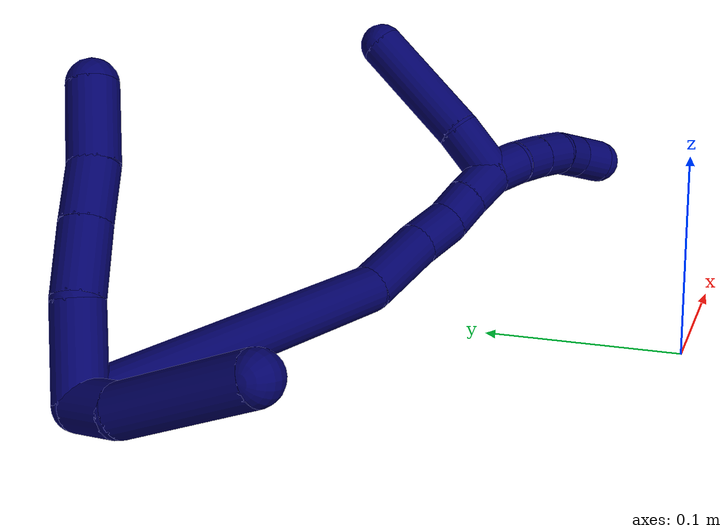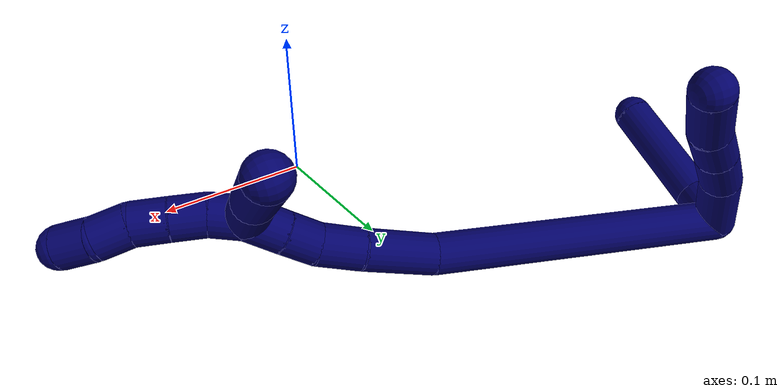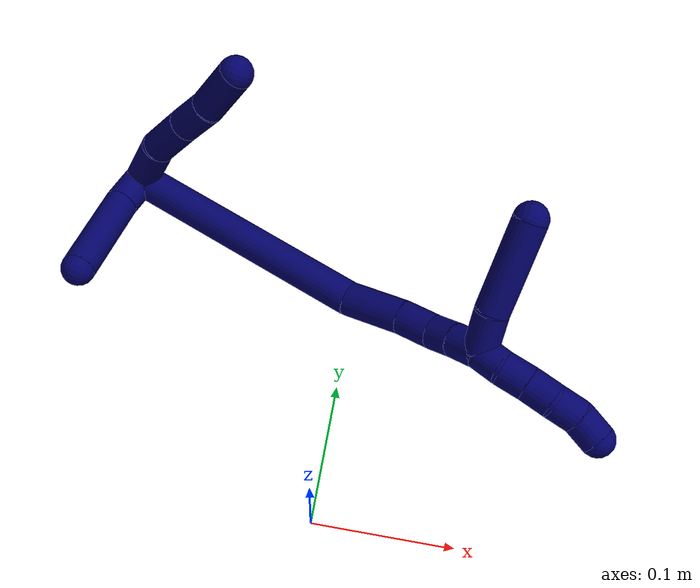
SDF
<sdf version="1.7">
 <world name="default">
  <model name="7">
   <static>0</static>
   <link name="7">
    <collision name="collision-cylinder-e_1_2_8">
     <pose>0.021775 0.003758 0.004145 -0.736529 1.31929 -0.581547</pose>
     <geometry><cylinder><radius>0.0125</radius><length>0.044965</length></cylinder></geometry>
     <surface>
      <friction><ode><mu>1.16</mu><mu2>1.16</mu2><slip1>0</slip1><slip2>0</slip2></ode></friction>
      <contact><ode><kp>1e+06</kp><kd>1</kd><max_vel>0</max_vel><min_depth>0.001</min_depth></ode></contact>
     </surface>
    </collision>
    <visual name="visual-cylinder-e_1_2_8">
     <pose>0.021775 0.003758 0.004145 -0.736529 1.31929 -0.581547</pose>
     <geometry><cylinder><radius>0.0125</radius><length>0.044965</length></cylinder></geometry>
     <material><ambient>0.003922 0 0.403922 1</ambient></material>
    </visual>
    <collision name="collision-cylinder-e_2_8_9">
     <pose>0.059567 0.009053 0.015993 -0.196898 1.11482 -0.122979</pose>
     <geometry><cylinder><radius>0.0125</radius><length>0.035679</length></cylinder></geometry>
     <surface>
      <friction><ode><mu>1.16</mu><mu2>1.16</mu2><slip1>0</slip1><slip2>0</slip2></ode></friction>
      <contact><ode><kp>1e+06</kp><kd>1</kd><max_vel>0</max_vel><min_depth>0.001</min_depth></ode></contact>
     </surface>
    </collision>
    <visual name="visual-cylinder-e_2_8_9">
     <pose>0.059567 0.009053 0.015993 -0.196898 1.11482 -0.122979</pose>
     <geometry><cylinder><radius>0.0125</radius><length>0.035679</length></cylinder></geometry>
     <material><ambient>0.003922 0 0.403922 1</ambient></material>
    </visual>
    <collision name="collision-cylinder-e_3_9_10">
     <pose>0.088482 0.012156 0.030243 -0.23483 1.08982 -0.142752</pose>
     <geometry><cylinder><radius>0.0125</radius><length>0.029096</length></cylinder></geometry>
     <surface>
      <friction><ode><mu>1.16</mu><mu2>1.16</mu2><slip1>0</slip1><slip2>0</slip2></ode></friction>
      <contact><ode><kp>1e+06</kp><kd>1</kd><max_vel>0</max_vel><min_depth>0.001</min_depth></ode></contact>
     </surface>
    </collision>
    <visual name="visual-cylinder-e_3_9_10">
     <pose>0.088482 0.012156 0.030243 -0.23483 1.08982 -0.142752</pose>
     <geometry><cylinder><radius>0.0125</radius><length>0.029096</length></cylinder></geometry>
     <material><ambient>0.003922 0 0.403922 1</ambient></material>
    </visual>
    <collision name="collision-cylinder-e_4_10_6">
     <pose>0.120411 0.014782 0.043259 -0.162326 1.23904 -0.115894</pose>
     <geometry><cylinder><radius>0.0125</radius><length>0.04026</length></cylinder></geometry>
     <surface>
      <friction><ode><mu>1.16</mu><mu2>1.16</mu2><slip1>0</slip1><slip2>0</slip2></ode></friction>
      <contact><ode><kp>1e+06</kp><kd>1</kd><max_vel>0</max_vel><min_depth>0.001</min_depth></ode></contact>
     </surface>
    </collision>
    <visual name="visual-cylinder-e_4_10_6">
     <pose>0.120411 0.014782 0.043259 -0.162326 1.23904 -0.115894</pose>
     <geometry><cylinder><radius>0.0125</radius><length>0.04026</length></cylinder></geometry>
     <material><ambient>0.003922 0 0.403922 1</ambient></material>
    </visual>
    <collision name="collision-cylinder-e_1_2_11">
     <pose>-0.003743 0.012283 -0.002883 -1.80136 -0.288378 0.362434</pose>
     <geometry><cylinder><radius>0.0125</radius><length>0.02632</length></cylinder></geometry>
     <surface>
      <friction><ode><mu>1.16</mu><mu2>1.16</mu2><slip1>0</slip1><slip2>0</slip2></ode></friction>
      <contact><ode><kp>1e+06</kp><kd>1</kd><max_vel>0</max_vel><min_depth>0.001</min_depth></ode></contact>
     </surface>
    </collision>
    <visual name="visual-cylinder-e_1_2_11">
     <pose>-0.003743 0.012283 -0.002883 -1.80136 -0.288378 0.362434</pose>
     <geometry><cylinder><radius>0.0125</radius><length>0.02632</length></cylinder></geometry>
     <material><ambient>0.003922 0 0.403922 1</ambient></material>
    </visual>
    <collision name="collision-cylinder-e_2_11_5">
     <pose>-0.009115 0.061323 -0.007608 -1.62085 -0.044259 0.046531</pose>
     <geometry><cylinder><radius>0.0125</radius><length>0.07368</length></cylinder></geometry>
     <surface>
      <friction><ode><mu>1.16</mu><mu2>1.16</mu2><slip1>0</slip1><slip2>0</slip2></ode></friction>
      <contact><ode><kp>1e+06</kp><kd>1</kd><max_vel>0</max_vel><min_depth>0.001</min_depth></ode></contact>
     </surface>
    </collision>
    <visual name="visual-cylinder-e_2_11_5">
     <pose>-0.009115 0.061323 -0.007608 -1.62085 -0.044259 0.046531</pose>
     <geometry><cylinder><radius>0.0125</radius><length>0.07368</length></cylinder></geometry>
     <material><ambient>0.003922 0 0.403922 1</ambient></material>
    </visual>
    <collision name="collision-cylinder-e_1_2_12">
     <pose>0.006886 0.025451 0.089124 -0.278166 0.074153 -0.010385</pose>
     <geometry><cylinder><radius>0.0125</radius><length>0.185884</length></cylinder></geometry>
     <surface>
      <friction><ode><mu>1.16</mu><mu2>1.16</mu2><slip1>0</slip1><slip2>0</slip2></ode></friction>
      <contact><ode><kp>1e+06</kp><kd>1</kd><max_vel>0</max_vel><min_depth>0.001</min_depth></ode></contact>
     </surface>
    </collision>
    <visual name="visual-cylinder-e_1_2_12">
     <pose>0.006886 0.025451 0.089124 -0.278166 0.074153 -0.010385</pose>
     <geometry><cylinder><radius>0.0125</radius><length>0.185884</length></cylinder></geometry>
     <material><ambient>0.003922 0 0.403922 1</ambient></material>
    </visual>
    <collision name="collision-cylinder-e_2_12_13">
     <pose>0.021747 0.057622 0.198273 -0.323757 0.361049 -0.059593</pose>
     <geometry><cylinder><radius>0.0125</radius><length>0.045157</length></cylinder></geometry>
     <surface>
      <friction><ode><mu>1.16</mu><mu2>1.16</mu2><slip1>0</slip1><slip2>0</slip2></ode></friction>
      <contact><ode><kp>1e+06</kp><kd>1</kd><max_vel>0</max_vel><min_depth>0.001</min_depth></ode></contact>
     </surface>
    </collision>
    <visual name="visual-cylinder-e_2_12_13">
     <pose>0.021747 0.057622 0.198273 -0.323757 0.361049 -0.059593</pose>
     <geometry><cylinder><radius>0.0125</radius><length>0.045157</length></cylinder></geometry>
     <material><ambient>0.003922 0 0.403922 1</ambient></material>
    </visual>
    <collision name="collision-cylinder-e_3_13_14">
     <pose>0.033709 0.06941 0.229801 -0.415034 0.307095 -0.065148</pose>
     <geometry><cylinder><radius>0.0125</radius><length>0.026373</length></cylinder></geometry>
     <surface>
      <friction><ode><mu>1.16</mu><mu2>1.16</mu2><slip1>0</slip1><slip2>0</slip2></ode></friction>
      <contact><ode><kp>1e+06</kp><kd>1</kd><max_vel>0</max_vel><min_depth>0.001</min_depth></ode></contact>
     </surface>
    </collision>
    <visual name="visual-cylinder-e_3_13_14">
     <pose>0.033709 0.06941 0.229801 -0.415034 0.307095 -0.065148</pose>
     <geometry><cylinder><radius>0.0125</radius><length>0.026373</length></cylinder></geometry>
     <material><ambient>0.003922 0 0.403922 1</ambient></material>
    </visual>
    <collision name="collision-cylinder-e_4_14_15">
     <pose>0.042542 0.079144 0.248733 -0.560777 0.504702 -0.148235</pose>
     <geometry><cylinder><radius>0.0125</radius><length>0.020046</length></cylinder></geometry>
     <surface>
      <friction><ode><mu>1.16</mu><mu2>1.16</mu2><slip1>0</slip1><slip2>0</slip2></ode></friction>
      <contact><ode><kp>1e+06</kp><kd>1</kd><max_vel>0</max_vel><min_depth>0.001</min_depth></ode></contact>
     </surface>
    </collision>
    <visual name="visual-cylinder-e_4_14_15">
     <pose>0.042542 0.079144 0.248733 -0.560777 0.504702 -0.148235</pose>
     <geometry><cylinder><radius>0.0125</radius><length>0.020046</length></cylinder></geometry>
     <material><ambient>0.003922 0 0.403922 1</ambient></material>
    </visual>
    <collision name="collision-cylinder-e_5_15_1">
     <pose>0.052468 0.089537 0.264434 -0.605613 0.467551 -0.148517</pose>
     <geometry><cylinder><radius>0.0125</radius><length>0.02254</length></cylinder></geometry>
     <surface>
      <friction><ode><mu>1.16</mu><mu2>1.16</mu2><slip1>0</slip1><slip2>0</slip2></ode></friction>
      <contact><ode><kp>1e+06</kp><kd>1</kd><max_vel>0</max_vel><min_depth>0.001</min_depth></ode></contact>
     </surface>
    </collision>
    <visual name="visual-cylinder-e_5_15_1">
     <pose>0.052468 0.089537 0.264434 -0.605613 0.467551 -0.148517</pose>
     <geometry><cylinder><radius>0.0125</radius><length>0.02254</length></cylinder></geometry>
     <material><ambient>0.003922 0 0.403922 1</ambient></material>
    </visual>
    <collision name="collision-cylinder-e_1_1_16">
     <pose>0.072337 0.090361 0.270694 1.96003 1.22673 1.61917</pose>
     <geometry><cylinder><radius>0.0125</radius><length>0.031421</length></cylinder></geometry>
     <surface>
      <friction><ode><mu>1.16</mu><mu2>1.16</mu2><slip1>0</slip1><slip2>0</slip2></ode></friction>
      <contact><ode><kp>1e+06</kp><kd>1</kd><max_vel>0</max_vel><min_depth>0.001</min_depth></ode></contact>
     </surface>
    </collision>
    <visual name="visual-cylinder-e_1_1_16">
     <pose>0.072337 0.090361 0.270694 1.96003 1.22673 1.61917</pose>
     <geometry><cylinder><radius>0.0125</radius><length>0.031421</length></cylinder></geometry>
     <material><ambient>0.003922 0 0.403922 1</ambient></material>
    </visual>
    <collision name="collision-cylinder-e_2_16_4">
     <pose>0.118071 0.070703 0.267941 1.62101 1.12536 1.17116</pose>
     <geometry><cylinder><radius>0.0125</radius><length>0.068579</length></cylinder></geometry>
     <surface>
      <friction><ode><mu>1.16</mu><mu2>1.16</mu2><slip1>0</slip1><slip2>0</slip2></ode></friction>
      <contact><ode><kp>1e+06</kp><kd>1</kd><max_vel>0</max_vel><min_depth>0.001</min_depth></ode></contact>
     </surface>
    </collision>
    <visual name="visual-cylinder-e_2_16_4">
     <pose>0.118071 0.070703 0.267941 1.62101 1.12536 1.17116</pose>
     <geometry><cylinder><radius>0.0125</radius><length>0.068579</length></cylinder></geometry>
     <material><ambient>0.003922 0 0.403922 1</ambient></material>
    </visual>
    <collision name="collision-cylinder-e_1_1_17">
     <pose>0.058782 0.099895 0.281482 -0.485425 0.123723 -0.03067</pose>
     <geometry><cylinder><radius>0.0125</radius><length>0.02</length></cylinder></geometry>
     <surface>
      <friction><ode><mu>1.16</mu><mu2>1.16</mu2><slip1>0</slip1><slip2>0</slip2></ode></friction>
      <contact><ode><kp>1e+06</kp><kd>1</kd><max_vel>0</max_vel><min_depth>0.001</min_depth></ode></contact>
     </surface>
    </collision>
    <visual name="visual-cylinder-e_1_1_17">
     <pose>0.058782 0.099895 0.281482 -0.485425 0.123723 -0.03067</pose>
     <geometry><cylinder><radius>0.0125</radius><length>0.02</length></cylinder></geometry>
     <material><ambient>0.003922 0 0.403922 1</ambient></material>
    </visual>
    <collision name="collision-cylinder-e_2_17_18">
     <pose>0.060434 0.107281 0.299863 -0.27945 0.041822 -0.005883</pose>
     <geometry><cylinder><radius>0.0125</radius><length>0.02</length></cylinder></geometry>
     <surface>
      <friction><ode><mu>1.16</mu><mu2>1.16</mu2><slip1>0</slip1><slip2>0</slip2></ode></friction>
      <contact><ode><kp>1e+06</kp><kd>1</kd><max_vel>0</max_vel><min_depth>0.001</min_depth></ode></contact>
     </surface>
    </collision>
    <visual name="visual-cylinder-e_2_17_18">
     <pose>0.060434 0.107281 0.299863 -0.27945 0.041822 -0.005883</pose>
     <geometry><cylinder><radius>0.0125</radius><length>0.02</length></cylinder></geometry>
     <material><ambient>0.003922 0 0.403922 1</ambient></material>
    </visual>
    <collision name="collision-cylinder-e_3_18_19">
     <pose>0.060687 0.113011 0.319013 -0.302032 -0.016516 0.002513</pose>
     <geometry><cylinder><radius>0.0125</radius><length>0.02</length></cylinder></geometry>
     <surface>
      <friction><ode><mu>1.16</mu><mu2>1.16</mu2><slip1>0</slip1><slip2>0</slip2></ode></friction>
      <contact><ode><kp>1e+06</kp><kd>1</kd><max_vel>0</max_vel><min_depth>0.001</min_depth></ode></contact>
     </surface>
    </collision>
    <visual name="visual-cylinder-e_3_18_19">
     <pose>0.060687 0.113011 0.319013 -0.302032 -0.016516 0.002513</pose>
     <geometry><cylinder><radius>0.0125</radius><length>0.02</length></cylinder></geometry>
     <material><ambient>0.003922 0 0.403922 1</ambient></material>
    </visual>
    <collision name="collision-cylinder-e_4_19_20">
     <pose>0.058699 0.116977 0.338341 -0.101018 -0.183245 0.009289</pose>
     <geometry><cylinder><radius>0.0125</radius><length>0.02</length></cylinder></geometry>
     <surface>
      <friction><ode><mu>1.16</mu><mu2>1.16</mu2><slip1>0</slip1><slip2>0</slip2></ode></friction>
      <contact><ode><kp>1e+06</kp><kd>1</kd><max_vel>0</max_vel><min_depth>0.001</min_depth></ode></contact>
     </surface>
    </collision>
    <visual name="visual-cylinder-e_4_19_20">
     <pose>0.058699 0.116977 0.338341 -0.101018 -0.183245 0.009289</pose>
     <geometry><cylinder><radius>0.0125</radius><length>0.02</length></cylinder></geometry>
     <material><ambient>0.003922 0 0.403922 1</ambient></material>
    </visual>
    <collision name="collision-cylinder-e_5_20_3">
     <pose>0.053694 0.121392 0.356963 -0.36958 -0.323936 0.061067</pose>
     <geometry><cylinder><radius>0.0125</radius><length>0.02</length></cylinder></geometry>
     <surface>
      <friction><ode><mu>1.16</mu><mu2>1.16</mu2><slip1>0</slip1><slip2>0</slip2></ode></friction>
      <contact><ode><kp>1e+06</kp><kd>1</kd><max_vel>0</max_vel><min_depth>0.001</min_depth></ode></contact>
     </surface>
    </collision>
    <visual name="visual-cylinder-e_5_20_3">
     <pose>0.053694 0.121392 0.356963 -0.36958 -0.323936 0.061067</pose>
     <geometry><cylinder><radius>0.0125</radius><length>0.02</length></cylinder></geometry>
     <material><ambient>0.003922 0 0.403922 1</ambient></material>
    </visual>
    <collision name="collision-sphere-3">
     <pose>0.050511 0.124817 0.365803 0 -0 0</pose>
     <geometry><sphere><radius>0.0125</radius></sphere></geometry>
     <surface>
      <friction><ode><mu>1.16</mu><mu2>1.16</mu2><slip1>0</slip1><slip2>0</slip2></ode></friction>
      <contact><ode><kp>1e+06</kp><kd>1</kd><max_vel>0</max_vel><min_depth>0.001</min_depth></ode></contact>
     </surface>
    </collision>
    <visual name="visual-sphere-3">
     <pose>0.050511 0.124817 0.365803 0 -0 0</pose>
     <geometry><sphere><radius>0.0125</radius></sphere></geometry>
     <material><ambient>0.003922 0 0.403922 1</ambient></material>
    </visual>
    <collision name="collision-sphere-20">
     <pose>0.056877 0.117968 0.348124 0 -0 0</pose>
     <geometry><sphere><radius>0.0125</radius></sphere></geometry>
     <surface>
      <friction><ode><mu>1.16</mu><mu2>1.16</mu2><slip1>0</slip1><slip2>0</slip2></ode></friction>
      <contact><ode><kp>1e+06</kp><kd>1</kd><max_vel>0</max_vel><min_depth>0.001</min_depth></ode></contact>
     </surface>
    </collision>
    <visual name="visual-sphere-20">
     <pose>0.056877 0.117968 0.348124 0 -0 0</pose>
     <geometry><sphere><radius>0.0125</radius></sphere></geometry>
     <material><ambient>0.003922 0 0.403922 1</ambient></material>
    </visual>
    <collision name="collision-sphere-19">
     <pose>0.060522 0.115985 0.328559 0 -0 0</pose>
     <geometry><sphere><radius>0.0125</radius></sphere></geometry>
     <surface>
      <friction><ode><mu>1.16</mu><mu2>1.16</mu2><slip1>0</slip1><slip2>0</slip2></ode></friction>
      <contact><ode><kp>1e+06</kp><kd>1</kd><max_vel>0</max_vel><min_depth>0.001</min_depth></ode></contact>
     </surface>
    </collision>
    <visual name="visual-sphere-19">
     <pose>0.060522 0.115985 0.328559 0 -0 0</pose>
     <geometry><sphere><radius>0.0125</radius></sphere></geometry>
     <material><ambient>0.003922 0 0.403922 1</ambient></material>
    </visual>
    <collision name="collision-sphere-11">
     <pose>-0.007485 0.024565 -0.005766 0 -0 0</pose>
     <geometry><sphere><radius>0.0125</radius></sphere></geometry>
     <surface>
      <friction><ode><mu>1.16</mu><mu2>1.16</mu2><slip1>0</slip1><slip2>0</slip2></ode></friction>
      <contact><ode><kp>1e+06</kp><kd>1</kd><max_vel>0</max_vel><min_depth>0.001</min_depth></ode></contact>
     </surface>
    </collision>
    <visual name="visual-sphere-11">
     <pose>-0.007485 0.024565 -0.005766 0 -0 0</pose>
     <geometry><sphere><radius>0.0125</radius></sphere></geometry>
     <material><ambient>0.003922 0 0.403922 1</ambient></material>
    </visual>
    <collision name="collision-sphere-6">
     <pose>0.139444 0.015841 0.049729 0 -0 0</pose>
     <geometry><sphere><radius>0.0125</radius></sphere></geometry>
     <surface>
      <friction><ode><mu>1.16</mu><mu2>1.16</mu2><slip1>0</slip1><slip2>0</slip2></ode></friction>
      <contact><ode><kp>1e+06</kp><kd>1</kd><max_vel>0</max_vel><min_depth>0.001</min_depth></ode></contact>
     </surface>
    </collision>
    <visual name="visual-sphere-6">
     <pose>0.139444 0.015841 0.049729 0 -0 0</pose>
     <geometry><sphere><radius>0.0125</radius></sphere></geometry>
     <material><ambient>0.003922 0 0.403922 1</ambient></material>
    </visual>
    <collision name="collision-sphere-10">
     <pose>0.101379 0.013722 0.036788 0 -0 0</pose>
     <geometry><sphere><radius>0.0125</radius></sphere></geometry>
     <surface>
      <friction><ode><mu>1.16</mu><mu2>1.16</mu2><slip1>0</slip1><slip2>0</slip2></ode></friction>
      <contact><ode><kp>1e+06</kp><kd>1</kd><max_vel>0</max_vel><min_depth>0.001</min_depth></ode></contact>
     </surface>
    </collision>
    <visual name="visual-sphere-10">
     <pose>0.101379 0.013722 0.036788 0 -0 0</pose>
     <geometry><sphere><radius>0.0125</radius></sphere></geometry>
     <material><ambient>0.003922 0 0.403922 1</ambient></material>
    </visual>
    <collision name="collision-sphere-9">
     <pose>0.075584 0.01059 0.023697 0 -0 0</pose>
     <geometry><sphere><radius>0.0125</radius></sphere></geometry>
     <surface>
      <friction><ode><mu>1.16</mu><mu2>1.16</mu2><slip1>0</slip1><slip2>0</slip2></ode></friction>
      <contact><ode><kp>1e+06</kp><kd>1</kd><max_vel>0</max_vel><min_depth>0.001</min_depth></ode></contact>
     </surface>
    </collision>
    <visual name="visual-sphere-9">
     <pose>0.075584 0.01059 0.023697 0 -0 0</pose>
     <geometry><sphere><radius>0.0125</radius></sphere></geometry>
     <material><ambient>0.003922 0 0.403922 1</ambient></material>
    </visual>
    <collision name="collision-sphere-2">
     <geometry><sphere><radius>0.0125</radius></sphere></geometry>
     <surface>
      <friction><ode><mu>1.16</mu><mu2>1.16</mu2><slip1>0</slip1><slip2>0</slip2></ode></friction>
      <contact><ode><kp>1e+06</kp><kd>1</kd><max_vel>0</max_vel><min_depth>0.001</min_depth></ode></contact>
     </surface>
    </collision>
    <visual name="visual-sphere-2">
     <geometry><sphere><radius>0.0125</radius></sphere></geometry>
     <material><ambient>0.003922 0 0.403922 1</ambient></material>
    </visual>
    <collision name="collision-sphere-8">
     <pose>0.04355 0.007517 0.00829 0 -0 0</pose>
     <geometry><sphere><radius>0.0125</radius></sphere></geometry>
     <surface>
      <friction><ode><mu>1.16</mu><mu2>1.16</mu2><slip1>0</slip1><slip2>0</slip2></ode></friction>
      <contact><ode><kp>1e+06</kp><kd>1</kd><max_vel>0</max_vel><min_depth>0.001</min_depth></ode></contact>
     </surface>
    </collision>
    <visual name="visual-sphere-8">
     <pose>0.04355 0.007517 0.00829 0 -0 0</pose>
     <geometry><sphere><radius>0.0125</radius></sphere></geometry>
     <material><ambient>0.003922 0 0.403922 1</ambient></material>
    </visual>
    <collision name="collision-sphere-5">
     <pose>-0.010745 0.098081 -0.009449 0 -0 0</pose>
     <geometry><sphere><radius>0.0125</radius></sphere></geometry>
     <surface>
      <friction><ode><mu>1.16</mu><mu2>1.16</mu2><slip1>0</slip1><slip2>0</slip2></ode></friction>
      <contact><ode><kp>1e+06</kp><kd>1</kd><max_vel>0</max_vel><min_depth>0.001</min_depth></ode></contact>
     </surface>
    </collision>
    <visual name="visual-sphere-5">
     <pose>-0.010745 0.098081 -0.009449 0 -0 0</pose>
     <geometry><sphere><radius>0.0125</radius></sphere></geometry>
     <material><ambient>0.003922 0 0.403922 1</ambient></material>
    </visual>
    <collision name="collision-sphere-12">
     <pose>0.013771 0.050902 0.178247 0 -0 0</pose>
     <geometry><sphere><radius>0.0125</radius></sphere></geometry>
     <surface>
      <friction><ode><mu>1.16</mu><mu2>1.16</mu2><slip1>0</slip1><slip2>0</slip2></ode></friction>
      <contact><ode><kp>1e+06</kp><kd>1</kd><max_vel>0</max_vel><min_depth>0.001</min_depth></ode></contact>
     </surface>
    </collision>
    <visual name="visual-sphere-12">
     <pose>0.013771 0.050902 0.178247 0 -0 0</pose>
     <geometry><sphere><radius>0.0125</radius></sphere></geometry>
     <material><ambient>0.003922 0 0.403922 1</ambient></material>
    </visual>
    <collision name="collision-sphere-13">
     <pose>0.029723 0.064342 0.218299 0 -0 0</pose>
     <geometry><sphere><radius>0.0125</radius></sphere></geometry>
     <surface>
      <friction><ode><mu>1.16</mu><mu2>1.16</mu2><slip1>0</slip1><slip2>0</slip2></ode></friction>
      <contact><ode><kp>1e+06</kp><kd>1</kd><max_vel>0</max_vel><min_depth>0.001</min_depth></ode></contact>
     </surface>
    </collision>
    <visual name="visual-sphere-13">
     <pose>0.029723 0.064342 0.218299 0 -0 0</pose>
     <geometry><sphere><radius>0.0125</radius></sphere></geometry>
     <material><ambient>0.003922 0 0.403922 1</ambient></material>
    </visual>
    <collision name="collision-sphere-14">
     <pose>0.037696 0.074478 0.241303 0 -0 0</pose>
     <geometry><sphere><radius>0.0125</radius></sphere></geometry>
     <surface>
      <friction><ode><mu>1.16</mu><mu2>1.16</mu2><slip1>0</slip1><slip2>0</slip2></ode></friction>
      <contact><ode><kp>1e+06</kp><kd>1</kd><max_vel>0</max_vel><min_depth>0.001</min_depth></ode></contact>
     </surface>
    </collision>
    <visual name="visual-sphere-14">
     <pose>0.037696 0.074478 0.241303 0 -0 0</pose>
     <geometry><sphere><radius>0.0125</radius></sphere></geometry>
     <material><ambient>0.003922 0 0.403922 1</ambient></material>
    </visual>
    <collision name="collision-sphere-15">
     <pose>0.047389 0.08381 0.256163 0 -0 0</pose>
     <geometry><sphere><radius>0.0125</radius></sphere></geometry>
     <surface>
      <friction><ode><mu>1.16</mu><mu2>1.16</mu2><slip1>0</slip1><slip2>0</slip2></ode></friction>
      <contact><ode><kp>1e+06</kp><kd>1</kd><max_vel>0</max_vel><min_depth>0.001</min_depth></ode></contact>
     </surface>
    </collision>
    <visual name="visual-sphere-15">
     <pose>0.047389 0.08381 0.256163 0 -0 0</pose>
     <geometry><sphere><radius>0.0125</radius></sphere></geometry>
     <material><ambient>0.003922 0 0.403922 1</ambient></material>
    </visual>
    <collision name="collision-sphere-1">
     <pose>0.057548 0.095265 0.272705 0 -0 0</pose>
     <geometry><sphere><radius>0.0125</radius></sphere></geometry>
     <surface>
      <friction><ode><mu>1.16</mu><mu2>1.16</mu2><slip1>0</slip1><slip2>0</slip2></ode></friction>
      <contact><ode><kp>1e+06</kp><kd>1</kd><max_vel>0</max_vel><min_depth>0.001</min_depth></ode></contact>
     </surface>
    </collision>
    <visual name="visual-sphere-1">
     <pose>0.057548 0.095265 0.272705 0 -0 0</pose>
     <geometry><sphere><radius>0.0125</radius></sphere></geometry>
     <material><ambient>0.003922 0 0.403922 1</ambient></material>
    </visual>
    <collision name="collision-sphere-18">
     <pose>0.060852 0.110037 0.309467 0 -0 0</pose>
     <geometry><sphere><radius>0.0125</radius></sphere></geometry>
     <surface>
      <friction><ode><mu>1.16</mu><mu2>1.16</mu2><slip1>0</slip1><slip2>0</slip2></ode></friction>
      <contact><ode><kp>1e+06</kp><kd>1</kd><max_vel>0</max_vel><min_depth>0.001</min_depth></ode></contact>
     </surface>
    </collision>
    <visual name="visual-sphere-18">
     <pose>0.060852 0.110037 0.309467 0 -0 0</pose>
     <geometry><sphere><radius>0.0125</radius></sphere></geometry>
     <material><ambient>0.003922 0 0.403922 1</ambient></material>
    </visual>
    <collision name="collision-sphere-16">
     <pose>0.087127 0.085458 0.268683 0 -0 0</pose>
     <geometry><sphere><radius>0.0125</radius></sphere></geometry>
     <surface>
      <friction><ode><mu>1.16</mu><mu2>1.16</mu2><slip1>0</slip1><slip2>0</slip2></ode></friction>
      <contact><ode><kp>1e+06</kp><kd>1</kd><max_vel>0</max_vel><min_depth>0.001</min_depth></ode></contact>
     </surface>
    </collision>
    <visual name="visual-sphere-16">
     <pose>0.087127 0.085458 0.268683 0 -0 0</pose>
     <geometry><sphere><radius>0.0125</radius></sphere></geometry>
     <material><ambient>0.003922 0 0.403922 1</ambient></material>
    </visual>
    <collision name="collision-sphere-4">
     <pose>0.149014 0.055948 0.2672 0 -0 0</pose>
     <geometry><sphere><radius>0.0125</radius></sphere></geometry>
     <surface>
      <friction><ode><mu>1.16</mu><mu2>1.16</mu2><slip1>0</slip1><slip2>0</slip2></ode></friction>
      <contact><ode><kp>1e+06</kp><kd>1</kd><max_vel>0</max_vel><min_depth>0.001</min_depth></ode></contact>
     </surface>
    </collision>
    <visual name="visual-sphere-4">
     <pose>0.149014 0.055948 0.2672 0 -0 0</pose>
     <geometry><sphere><radius>0.0125</radius></sphere></geometry>
     <material><ambient>0.003922 0 0.403922 1</ambient></material>
    </visual>
    <collision name="collision-sphere-17">
     <pose>0.060016 0.104525 0.290259 0 -0 0</pose>
     <geometry><sphere><radius>0.0125</radius></sphere></geometry>
     <surface>
      <friction><ode><mu>1.16</mu><mu2>1.16</mu2><slip1>0</slip1><slip2>0</slip2></ode></friction>
      <contact><ode><kp>1e+06</kp><kd>1</kd><max_vel>0</max_vel><min_depth>0.001</min_depth></ode></contact>
     </surface>
    </collision>
    <visual name="visual-sphere-17">
     <pose>0.060016 0.104525 0.290259 0 -0 0</pose>
     <geometry><sphere><radius>0.0125</radius></sphere></geometry>
     <material><ambient>0.003922 0 0.403922 1</ambient></material>
    </visual>
    <inertial>
     <pose>0.041545 0.050546 0.138751 0 -0 0</pose>
     <mass>0.75</mass>
     <inertia>
      <ixx>0.000641</ixx>
      <ixy>0</ixy>
      <ixz>0</ixz>
      <iyy>0.000615</iyy>
      <iyz>0</iyz>
      <izz>-0.000249</izz>
     </inertia>
    </inertial>
   </link>
   <pose>-0.174614 0.232978 0.01221 1.92802 -1.13091 1.0797</pose>
  </model>
 </world>
</sdf>
